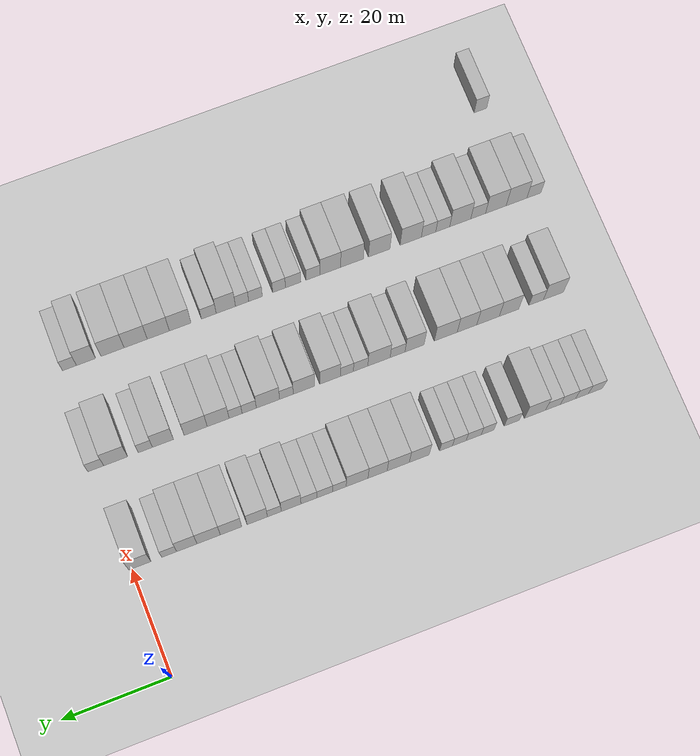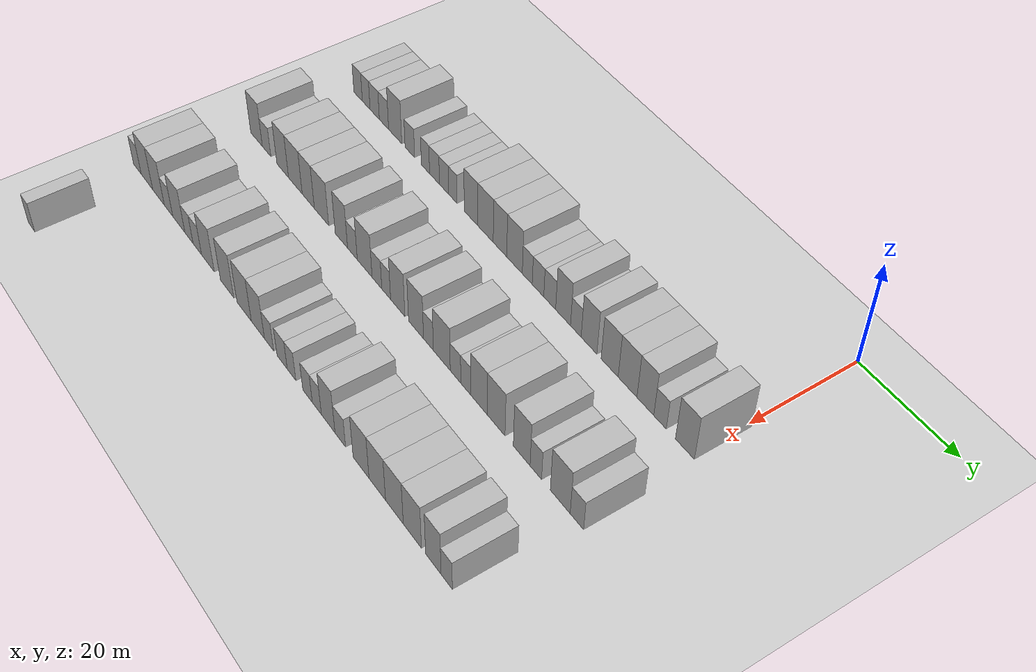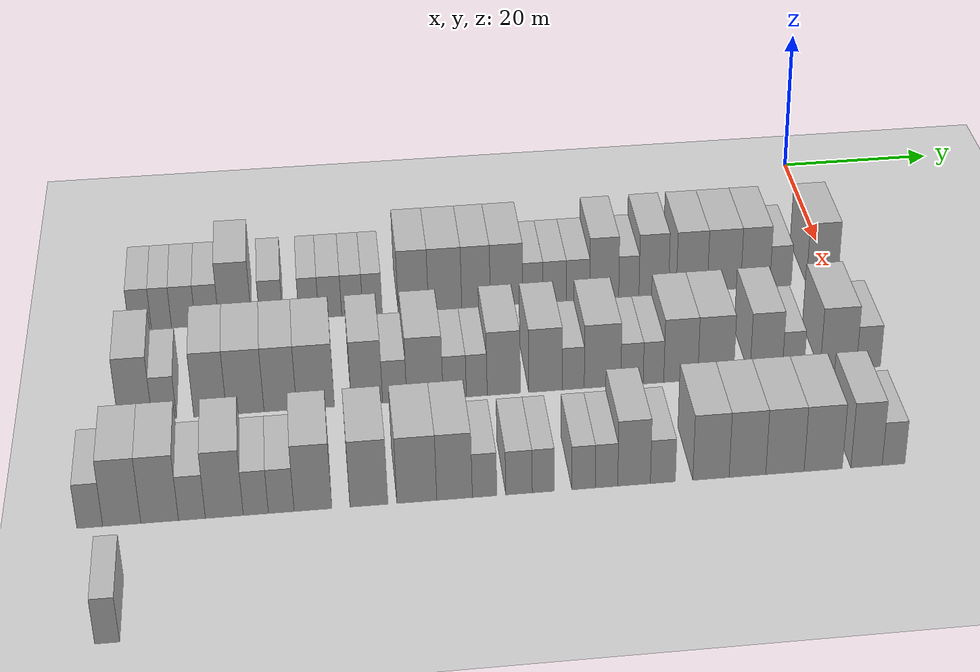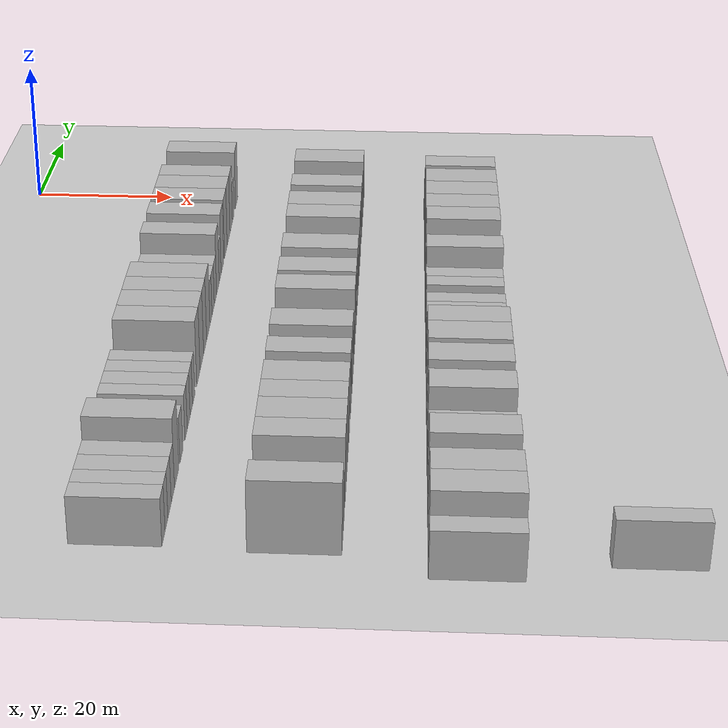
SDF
<sdf version="1.6">
 <world name="default">
  <include><name>ground_plane_1</name><uri>model://HANNAS_ground_plane</uri></include>
  <model name="building_60">
   <static>1</static>
   <pose>25.0000 -87.8100 0 0.000000 0.000000 0.000000</pose>
   <link name="link">
    <pose>0 0 3.00 0 0 0</pose>
    <collision name="collision"><geometry><box><size>10.0000 2.7169 6.0000</size></box></geometry></collision>
    <visual name="visual">
     <cast_shadows>0</cast_shadows>
     <geometry><box><size>10.0000 2.7169 6.0000</size></box></geometry>
     <material>
      <script>
       <uri>model://HANNAS_wall/materials/scripts</uri>
       <uri>model://HANNAS_wall/materials/textures</uri>
       <name>vrc/HANNAS_wall</name>
      </script>
     </material>
    </visual>
   </link>
  </model>
  <model name="building_61">
   <static>1</static>
   <pose>25.0000 -85.2121 0 0.000000 0.000000 0.000000</pose>
   <link name="link">
    <pose>0 0 3.00 0 0 0</pose>
    <collision name="collision"><geometry><box><size>10.0000 2.4790 6.0000</size></box></geometry></collision>
    <visual name="visual">
     <cast_shadows>0</cast_shadows>
     <geometry><box><size>10.0000 2.4790 6.0000</size></box></geometry>
     <material>
      <script>
       <uri>model://HANNAS_wall/materials/scripts</uri>
       <uri>model://HANNAS_wall/materials/textures</uri>
       <name>vrc/HANNAS_wall</name>
      </script>
     </material>
    </visual>
   </link>
  </model>
  <model name="building_62">
   <static>1</static>
   <pose>25.0000 -82.4997 0 0.000000 0.000000 0.000000</pose>
   <link name="link">
    <pose>0 0 3.00 0 0 0</pose>
    <collision name="collision"><geometry><box><size>10.0000 2.9458 6.0000</size></box></geometry></collision>
    <visual name="visual">
     <cast_shadows>0</cast_shadows>
     <geometry><box><size>10.0000 2.9458 6.0000</size></box></geometry>
     <material>
      <script>
       <uri>model://HANNAS_wall/materials/scripts</uri>
       <uri>model://HANNAS_wall/materials/textures</uri>
       <name>vrc/HANNAS_wall</name>
      </script>
     </material>
    </visual>
   </link>
  </model>
  <model name="building_63">
   <static>1</static>
   <pose>25.0000 -79.5836 0 0.000000 0.000000 0.000000</pose>
   <link name="link">
    <pose>0 0 3.00 0 0 0</pose>
    <collision name="collision"><geometry><box><size>10.0000 2.8862 6.0000</size></box></geometry></collision>
    <visual name="visual">
     <cast_shadows>0</cast_shadows>
     <geometry><box><size>10.0000 2.8862 6.0000</size></box></geometry>
     <material>
      <script>
       <uri>model://HANNAS_wall/materials/scripts</uri>
       <uri>model://HANNAS_wall/materials/textures</uri>
       <name>vrc/HANNAS_wall</name>
      </script>
     </material>
    </visual>
   </link>
  </model>
  <model name="building_64">
   <static>1</static>
   <pose>25.0000 -76.1144 0 0.000000 0.000000 0.000000</pose>
   <link name="link">
    <pose>0 0 4.50 0 0 0</pose>
    <collision name="collision"><geometry><box><size>10.0000 4.0522 9.0000</size></box></geometry></collision>
    <visual name="visual">
     <cast_shadows>0</cast_shadows>
     <geometry><box><size>10.0000 4.0522 9.0000</size></box></geometry>
     <material>
      <script>
       <uri>model://HANNAS_wall/materials/scripts</uri>
       <uri>model://HANNAS_wall/materials/textures</uri>
       <name>vrc/HANNAS_wall</name>
      </script>
     </material>
    </visual>
   </link>
  </model>
  <model name="building_65">
   <static>1</static>
   <pose>25.0000 -71.6403 0 0.000000 0.000000 0.000000</pose>
   <link name="link">
    <pose>0 0 3.00 0 0 0</pose>
    <collision name="collision"><geometry><box><size>10.0000 2.8962 6.0000</size></box></geometry></collision>
    <visual name="visual">
     <cast_shadows>0</cast_shadows>
     <geometry><box><size>10.0000 2.8962 6.0000</size></box></geometry>
     <material>
      <script>
       <uri>model://HANNAS_wall/materials/scripts</uri>
       <uri>model://HANNAS_wall/materials/textures</uri>
       <name>vrc/HANNAS_wall</name>
      </script>
     </material>
    </visual>
   </link>
  </model>
  <model name="building_66">
   <static>1</static>
   <pose>25.0000 -66.9735 0 0.000000 0.000000 0.000000</pose>
   <link name="link">
    <pose>0 0 3.00 0 0 0</pose>
    <collision name="collision"><geometry><box><size>10.0000 2.4374 6.0000</size></box></geometry></collision>
    <visual name="visual">
     <cast_shadows>0</cast_shadows>
     <geometry><box><size>10.0000 2.4374 6.0000</size></box></geometry>
     <material>
      <script>
       <uri>model://HANNAS_wall/materials/scripts</uri>
       <uri>model://HANNAS_wall/materials/textures</uri>
       <name>vrc/HANNAS_wall</name>
      </script>
     </material>
    </visual>
   </link>
  </model>
  <model name="building_67">
   <static>1</static>
   <pose>25.0000 -64.3177 0 0.000000 0.000000 0.000000</pose>
   <link name="link">
    <pose>0 0 3.00 0 0 0</pose>
    <collision name="collision"><geometry><box><size>10.0000 2.8742 6.0000</size></box></geometry></collision>
    <visual name="visual">
     <cast_shadows>0</cast_shadows>
     <geometry><box><size>10.0000 2.8742 6.0000</size></box></geometry>
     <material>
      <script>
       <uri>model://HANNAS_wall/materials/scripts</uri>
       <uri>model://HANNAS_wall/materials/textures</uri>
       <name>vrc/HANNAS_wall</name>
      </script>
     </material>
    </visual>
   </link>
  </model>
  <model name="building_68">
   <static>1</static>
   <pose>25.0000 -61.5649 0 0.000000 0.000000 0.000000</pose>
   <link name="link">
    <pose>0 0 3.00 0 0 0</pose>
    <collision name="collision"><geometry><box><size>10.0000 2.6316 6.0000</size></box></geometry></collision>
    <visual name="visual">
     <cast_shadows>0</cast_shadows>
     <geometry><box><size>10.0000 2.6316 6.0000</size></box></geometry>
     <material>
      <script>
       <uri>model://HANNAS_wall/materials/scripts</uri>
       <uri>model://HANNAS_wall/materials/textures</uri>
       <name>vrc/HANNAS_wall</name>
      </script>
     </material>
    </visual>
   </link>
  </model>
  <model name="building_69">
   <static>1</static>
   <pose>25.0000 -59.0268 0 0.000000 0.000000 0.000000</pose>
   <link name="link">
    <pose>0 0 3.00 0 0 0</pose>
    <collision name="collision"><geometry><box><size>10.0000 2.4444 6.0000</size></box></geometry></collision>
    <visual name="visual">
     <cast_shadows>0</cast_shadows>
     <geometry><box><size>10.0000 2.4444 6.0000</size></box></geometry>
     <material>
      <script>
       <uri>model://HANNAS_wall/materials/scripts</uri>
       <uri>model://HANNAS_wall/materials/textures</uri>
       <name>vrc/HANNAS_wall</name>
      </script>
     </material>
    </visual>
   </link>
  </model>
  <model name="building_70">
   <static>1</static>
   <pose>25.0000 -53.9069 0 0.000000 0.000000 0.000000</pose>
   <link name="link">
    <pose>0 0 4.50 0 0 0</pose>
    <collision name="collision"><geometry><box><size>10.0000 3.7955 9.0000</size></box></geometry></collision>
    <visual name="visual">
     <cast_shadows>0</cast_shadows>
     <geometry><box><size>10.0000 3.7955 9.0000</size></box></geometry>
     <material>
      <script>
       <uri>model://HANNAS_wall/materials/scripts</uri>
       <uri>model://HANNAS_wall/materials/textures</uri>
       <name>vrc/HANNAS_wall</name>
      </script>
     </material>
    </visual>
   </link>
  </model>
  <model name="building_71">
   <static>1</static>
   <pose>25.0000 -49.9043 0 0.000000 0.000000 0.000000</pose>
   <link name="link">
    <pose>0 0 4.50 0 0 0</pose>
    <collision name="collision"><geometry><box><size>10.0000 4.2096 9.0000</size></box></geometry></collision>
    <visual name="visual">
     <cast_shadows>0</cast_shadows>
     <geometry><box><size>10.0000 4.2096 9.0000</size></box></geometry>
     <material>
      <script>
       <uri>model://HANNAS_wall/materials/scripts</uri>
       <uri>model://HANNAS_wall/materials/textures</uri>
       <name>vrc/HANNAS_wall</name>
      </script>
     </material>
    </visual>
   </link>
  </model>
  <model name="building_72">
   <static>1</static>
   <pose>25.0000 -45.9890 0 0.000000 0.000000 0.000000</pose>
   <link name="link">
    <pose>0 0 4.50 0 0 0</pose>
    <collision name="collision"><geometry><box><size>10.0000 3.6211 9.0000</size></box></geometry></collision>
    <visual name="visual">
     <cast_shadows>0</cast_shadows>
     <geometry><box><size>10.0000 3.6211 9.0000</size></box></geometry>
     <material>
      <script>
       <uri>model://HANNAS_wall/materials/scripts</uri>
       <uri>model://HANNAS_wall/materials/textures</uri>
       <name>vrc/HANNAS_wall</name>
      </script>
     </material>
    </visual>
   </link>
  </model>
  <model name="building_73">
   <static>1</static>
   <pose>25.0000 -42.1173 0 0.000000 0.000000 0.000000</pose>
   <link name="link">
    <pose>0 0 4.50 0 0 0</pose>
    <collision name="collision"><geometry><box><size>10.0000 4.1223 9.0000</size></box></geometry></collision>
    <visual name="visual">
     <cast_shadows>0</cast_shadows>
     <geometry><box><size>10.0000 4.1223 9.0000</size></box></geometry>
     <material>
      <script>
       <uri>model://HANNAS_wall/materials/scripts</uri>
       <uri>model://HANNAS_wall/materials/textures</uri>
       <name>vrc/HANNAS_wall</name>
      </script>
     </material>
    </visual>
   </link>
  </model>
  <model name="building_74">
   <static>1</static>
   <pose>25.0000 -38.7718 0 0.000000 0.000000 0.000000</pose>
   <link name="link">
    <pose>0 0 3.00 0 0 0</pose>
    <collision name="collision"><geometry><box><size>10.0000 2.5688 6.0000</size></box></geometry></collision>
    <visual name="visual">
     <cast_shadows>0</cast_shadows>
     <geometry><box><size>10.0000 2.5688 6.0000</size></box></geometry>
     <material>
      <script>
       <uri>model://HANNAS_wall/materials/scripts</uri>
       <uri>model://HANNAS_wall/materials/textures</uri>
       <name>vrc/HANNAS_wall</name>
      </script>
     </material>
    </visual>
   </link>
  </model>
  <model name="building_75">
   <static>1</static>
   <pose>25.0000 -36.0039 0 0.000000 0.000000 0.000000</pose>
   <link name="link">
    <pose>0 0 3.00 0 0 0</pose>
    <collision name="collision"><geometry><box><size>10.0000 2.9669 6.0000</size></box></geometry></collision>
    <visual name="visual">
     <cast_shadows>0</cast_shadows>
     <geometry><box><size>10.0000 2.9669 6.0000</size></box></geometry>
     <material>
      <script>
       <uri>model://HANNAS_wall/materials/scripts</uri>
       <uri>model://HANNAS_wall/materials/textures</uri>
       <name>vrc/HANNAS_wall</name>
      </script>
     </material>
    </visual>
   </link>
  </model>
  <model name="building_76">
   <static>1</static>
   <pose>25.0000 -33.0251 0 0.000000 0.000000 0.000000</pose>
   <link name="link">
    <pose>0 0 3.00 0 0 0</pose>
    <collision name="collision"><geometry><box><size>10.0000 2.9907 6.0000</size></box></geometry></collision>
    <visual name="visual">
     <cast_shadows>0</cast_shadows>
     <geometry><box><size>10.0000 2.9907 6.0000</size></box></geometry>
     <material>
      <script>
       <uri>model://HANNAS_wall/materials/scripts</uri>
       <uri>model://HANNAS_wall/materials/textures</uri>
       <name>vrc/HANNAS_wall</name>
      </script>
     </material>
    </visual>
   </link>
  </model>
  <model name="building_77">
   <static>1</static>
   <pose>25.0000 -29.6855 0 0.000000 0.000000 0.000000</pose>
   <link name="link">
    <pose>0 0 4.50 0 0 0</pose>
    <collision name="collision"><geometry><box><size>10.0000 3.6885 9.0000</size></box></geometry></collision>
    <visual name="visual">
     <cast_shadows>0</cast_shadows>
     <geometry><box><size>10.0000 3.6885 9.0000</size></box></geometry>
     <material>
      <script>
       <uri>model://HANNAS_wall/materials/scripts</uri>
       <uri>model://HANNAS_wall/materials/textures</uri>
       <name>vrc/HANNAS_wall</name>
      </script>
     </material>
    </visual>
   </link>
  </model>
  <model name="building_78">
   <static>1</static>
   <pose>25.0000 -26.5414 0 0.000000 0.000000 0.000000</pose>
   <link name="link">
    <pose>0 0 3.00 0 0 0</pose>
    <collision name="collision"><geometry><box><size>10.0000 2.5996 6.0000</size></box></geometry></collision>
    <visual name="visual">
     <cast_shadows>0</cast_shadows>
     <geometry><box><size>10.0000 2.5996 6.0000</size></box></geometry>
     <material>
      <script>
       <uri>model://HANNAS_wall/materials/scripts</uri>
       <uri>model://HANNAS_wall/materials/textures</uri>
       <name>vrc/HANNAS_wall</name>
      </script>
     </material>
    </visual>
   </link>
  </model>
  <model name="building_79">
   <static>1</static>
   <pose>25.0000 -23.3425 0 0.000000 0.000000 0.000000</pose>
   <link name="link">
    <pose>0 0 4.50 0 0 0</pose>
    <collision name="collision"><geometry><box><size>10.0000 3.7981 9.0000</size></box></geometry></collision>
    <visual name="visual">
     <cast_shadows>0</cast_shadows>
     <geometry><box><size>10.0000 3.7981 9.0000</size></box></geometry>
     <material>
      <script>
       <uri>model://HANNAS_wall/materials/scripts</uri>
       <uri>model://HANNAS_wall/materials/textures</uri>
       <name>vrc/HANNAS_wall</name>
      </script>
     </material>
    </visual>
   </link>
  </model>
  <model name="building_80">
   <static>1</static>
   <pose>25.0000 -18.4394 0 0.000000 0.000000 0.000000</pose>
   <link name="link">
    <pose>0 0 4.50 0 0 0</pose>
    <collision name="collision"><geometry><box><size>10.0000 4.0082 9.0000</size></box></geometry></collision>
    <visual name="visual">
     <cast_shadows>0</cast_shadows>
     <geometry><box><size>10.0000 4.0082 9.0000</size></box></geometry>
     <material>
      <script>
       <uri>model://HANNAS_wall/materials/scripts</uri>
       <uri>model://HANNAS_wall/materials/textures</uri>
       <name>vrc/HANNAS_wall</name>
      </script>
     </material>
    </visual>
   </link>
  </model>
  <model name="building_81">
   <static>1</static>
   <pose>25.0000 -14.2755 0 0.000000 0.000000 0.000000</pose>
   <link name="link">
    <pose>0 0 4.50 0 0 0</pose>
    <collision name="collision"><geometry><box><size>10.0000 4.3196 9.0000</size></box></geometry></collision>
    <visual name="visual">
     <cast_shadows>0</cast_shadows>
     <geometry><box><size>10.0000 4.3196 9.0000</size></box></geometry>
     <material>
      <script>
       <uri>model://HANNAS_wall/materials/scripts</uri>
       <uri>model://HANNAS_wall/materials/textures</uri>
       <name>vrc/HANNAS_wall</name>
      </script>
     </material>
    </visual>
   </link>
  </model>
  <model name="building_82">
   <static>1</static>
   <pose>25.0000 -10.2215 0 0.000000 0.000000 0.000000</pose>
   <link name="link">
    <pose>0 0 4.50 0 0 0</pose>
    <collision name="collision"><geometry><box><size>10.0000 3.7882 9.0000</size></box></geometry></collision>
    <visual name="visual">
     <cast_shadows>0</cast_shadows>
     <geometry><box><size>10.0000 3.7882 9.0000</size></box></geometry>
     <material>
      <script>
       <uri>model://HANNAS_wall/materials/scripts</uri>
       <uri>model://HANNAS_wall/materials/textures</uri>
       <name>vrc/HANNAS_wall</name>
      </script>
     </material>
    </visual>
   </link>
  </model>
  <model name="building_83">
   <static>1</static>
   <pose>25.0000 -6.9398 0 0.000000 0.000000 0.000000</pose>
   <link name="link">
    <pose>0 0 3.00 0 0 0</pose>
    <collision name="collision"><geometry><box><size>10.0000 2.7752 6.0000</size></box></geometry></collision>
    <visual name="visual">
     <cast_shadows>0</cast_shadows>
     <geometry><box><size>10.0000 2.7752 6.0000</size></box></geometry>
     <material>
      <script>
       <uri>model://HANNAS_wall/materials/scripts</uri>
       <uri>model://HANNAS_wall/materials/textures</uri>
       <name>vrc/HANNAS_wall</name>
      </script>
     </material>
    </visual>
   </link>
  </model>
  <model name="building_84">
   <static>1</static>
   <pose>25.0000 -1.5081 0 0.000000 0.000000 0.000000</pose>
   <link name="link">
    <pose>0 0 4.50 0 0 0</pose>
    <collision name="collision"><geometry><box><size>10.0000 4.0881 9.0000</size></box></geometry></collision>
    <visual name="visual">
     <cast_shadows>0</cast_shadows>
     <geometry><box><size>10.0000 4.0881 9.0000</size></box></geometry>
     <material>
      <script>
       <uri>model://HANNAS_wall/materials/scripts</uri>
       <uri>model://HANNAS_wall/materials/textures</uri>
       <name>vrc/HANNAS_wall</name>
      </script>
     </material>
    </visual>
   </link>
  </model>
  <model name="building_232">
   <static>1</static>
   <pose>44.0000 -87.7661 0 0.000000 0.000000 0.000000</pose>
   <link name="link">
    <pose>0 0 4.50 0 0 0</pose>
    <collision name="collision"><geometry><box><size>10.0000 3.9168 9.0000</size></box></geometry></collision>
    <visual name="visual">
     <cast_shadows>0</cast_shadows>
     <geometry><box><size>10.0000 3.9168 9.0000</size></box></geometry>
     <material>
      <script>
       <uri>model://HANNAS_wall/materials/scripts</uri>
       <uri>model://HANNAS_wall/materials/textures</uri>
       <name>vrc/HANNAS_wall</name>
      </script>
     </material>
    </visual>
   </link>
  </model>
  <model name="building_233">
   <static>1</static>
   <pose>44.0000 -84.3875 0 0.000000 0.000000 0.000000</pose>
   <link name="link">
    <pose>0 0 3.00 0 0 0</pose>
    <collision name="collision"><geometry><box><size>10.0000 2.8404 6.0000</size></box></geometry></collision>
    <visual name="visual">
     <cast_shadows>0</cast_shadows>
     <geometry><box><size>10.0000 2.8404 6.0000</size></box></geometry>
     <material>
      <script>
       <uri>model://HANNAS_wall/materials/scripts</uri>
       <uri>model://HANNAS_wall/materials/textures</uri>
       <name>vrc/HANNAS_wall</name>
      </script>
     </material>
    </visual>
   </link>
  </model>
  <model name="building_234">
   <static>1</static>
   <pose>44.0000 -79.0650 0 0.000000 0.000000 0.000000</pose>
   <link name="link">
    <pose>0 0 4.50 0 0 0</pose>
    <collision name="collision"><geometry><box><size>10.0000 3.8046 9.0000</size></box></geometry></collision>
    <visual name="visual">
     <cast_shadows>0</cast_shadows>
     <geometry><box><size>10.0000 3.8046 9.0000</size></box></geometry>
     <material>
      <script>
       <uri>model://HANNAS_wall/materials/scripts</uri>
       <uri>model://HANNAS_wall/materials/textures</uri>
       <name>vrc/HANNAS_wall</name>
      </script>
     </material>
    </visual>
   </link>
  </model>
  <model name="building_235">
   <static>1</static>
   <pose>44.0000 -74.9715 0 0.000000 0.000000 0.000000</pose>
   <link name="link">
    <pose>0 0 4.50 0 0 0</pose>
    <collision name="collision"><geometry><box><size>10.0000 4.3825 9.0000</size></box></geometry></collision>
    <visual name="visual">
     <cast_shadows>0</cast_shadows>
     <geometry><box><size>10.0000 4.3825 9.0000</size></box></geometry>
     <material>
      <script>
       <uri>model://HANNAS_wall/materials/scripts</uri>
       <uri>model://HANNAS_wall/materials/textures</uri>
       <name>vrc/HANNAS_wall</name>
      </script>
     </material>
    </visual>
   </link>
  </model>
  <model name="building_236">
   <static>1</static>
   <pose>44.0000 -70.8755 0 0.000000 0.000000 0.000000</pose>
   <link name="link">
    <pose>0 0 4.50 0 0 0</pose>
    <collision name="collision"><geometry><box><size>10.0000 3.8094 9.0000</size></box></geometry></collision>
    <visual name="visual">
     <cast_shadows>0</cast_shadows>
     <geometry><box><size>10.0000 3.8094 9.0000</size></box></geometry>
     <material>
      <script>
       <uri>model://HANNAS_wall/materials/scripts</uri>
       <uri>model://HANNAS_wall/materials/textures</uri>
       <name>vrc/HANNAS_wall</name>
      </script>
     </material>
    </visual>
   </link>
  </model>
  <model name="building_237">
   <static>1</static>
   <pose>44.0000 -66.7495 0 0.000000 0.000000 0.000000</pose>
   <link name="link">
    <pose>0 0 4.50 0 0 0</pose>
    <collision name="collision"><geometry><box><size>10.0000 4.4424 9.0000</size></box></geometry></collision>
    <visual name="visual">
     <cast_shadows>0</cast_shadows>
     <geometry><box><size>10.0000 4.4424 9.0000</size></box></geometry>
     <material>
      <script>
       <uri>model://HANNAS_wall/materials/scripts</uri>
       <uri>model://HANNAS_wall/materials/textures</uri>
       <name>vrc/HANNAS_wall</name>
      </script>
     </material>
    </visual>
   </link>
  </model>
  <model name="building_238">
   <static>1</static>
   <pose>44.0000 -60.6837 0 0.000000 0.000000 0.000000</pose>
   <link name="link">
    <pose>0 0 4.50 0 0 0</pose>
    <collision name="collision"><geometry><box><size>10.0000 3.6893 9.0000</size></box></geometry></collision>
    <visual name="visual">
     <cast_shadows>0</cast_shadows>
     <geometry><box><size>10.0000 3.6893 9.0000</size></box></geometry>
     <material>
      <script>
       <uri>model://HANNAS_wall/materials/scripts</uri>
       <uri>model://HANNAS_wall/materials/textures</uri>
       <name>vrc/HANNAS_wall</name>
      </script>
     </material>
    </visual>
   </link>
  </model>
  <model name="building_239">
   <static>1</static>
   <pose>44.0000 -57.4089 0 0.000000 0.000000 0.000000</pose>
   <link name="link">
    <pose>0 0 3.00 0 0 0</pose>
    <collision name="collision"><geometry><box><size>10.0000 2.8602 6.0000</size></box></geometry></collision>
    <visual name="visual">
     <cast_shadows>0</cast_shadows>
     <geometry><box><size>10.0000 2.8602 6.0000</size></box></geometry>
     <material>
      <script>
       <uri>model://HANNAS_wall/materials/scripts</uri>
       <uri>model://HANNAS_wall/materials/textures</uri>
       <name>vrc/HANNAS_wall</name>
      </script>
     </material>
    </visual>
   </link>
  </model>
  <model name="building_240">
   <static>1</static>
   <pose>44.0000 -53.8265 0 0.000000 0.000000 0.000000</pose>
   <link name="link">
    <pose>0 0 4.50 0 0 0</pose>
    <collision name="collision"><geometry><box><size>10.0000 4.3045 9.0000</size></box></geometry></collision>
    <visual name="visual">
     <cast_shadows>0</cast_shadows>
     <geometry><box><size>10.0000 4.3045 9.0000</size></box></geometry>
     <material>
      <script>
       <uri>model://HANNAS_wall/materials/scripts</uri>
       <uri>model://HANNAS_wall/materials/textures</uri>
       <name>vrc/HANNAS_wall</name>
      </script>
     </material>
    </visual>
   </link>
  </model>
  <model name="building_241">
   <static>1</static>
   <pose>44.0000 -50.2879 0 0.000000 0.000000 0.000000</pose>
   <link name="link">
    <pose>0 0 3.00 0 0 0</pose>
    <collision name="collision"><geometry><box><size>10.0000 2.7726 6.0000</size></box></geometry></collision>
    <visual name="visual">
     <cast_shadows>0</cast_shadows>
     <geometry><box><size>10.0000 2.7726 6.0000</size></box></geometry>
     <material>
      <script>
       <uri>model://HANNAS_wall/materials/scripts</uri>
       <uri>model://HANNAS_wall/materials/textures</uri>
       <name>vrc/HANNAS_wall</name>
      </script>
     </material>
    </visual>
   </link>
  </model>
  <model name="building_242">
   <static>1</static>
   <pose>44.0000 -47.6591 0 0.000000 0.000000 0.000000</pose>
   <link name="link">
    <pose>0 0 3.00 0 0 0</pose>
    <collision name="collision"><geometry><box><size>10.0000 2.4850 6.0000</size></box></geometry></collision>
    <visual name="visual">
     <cast_shadows>0</cast_shadows>
     <geometry><box><size>10.0000 2.4850 6.0000</size></box></geometry>
     <material>
      <script>
       <uri>model://HANNAS_wall/materials/scripts</uri>
       <uri>model://HANNAS_wall/materials/textures</uri>
       <name>vrc/HANNAS_wall</name>
      </script>
     </material>
    </visual>
   </link>
  </model>
  <model name="building_243">
   <static>1</static>
   <pose>44.0000 -44.4309 0 0.000000 0.000000 0.000000</pose>
   <link name="link">
    <pose>0 0 4.50 0 0 0</pose>
    <collision name="collision"><geometry><box><size>10.0000 3.9715 9.0000</size></box></geometry></collision>
    <visual name="visual">
     <cast_shadows>0</cast_shadows>
     <geometry><box><size>10.0000 3.9715 9.0000</size></box></geometry>
     <material>
      <script>
       <uri>model://HANNAS_wall/materials/scripts</uri>
       <uri>model://HANNAS_wall/materials/textures</uri>
       <name>vrc/HANNAS_wall</name>
      </script>
     </material>
    </visual>
   </link>
  </model>
  <model name="building_244">
   <static>1</static>
   <pose>44.0000 -39.4222 0 0.000000 0.000000 0.000000</pose>
   <link name="link">
    <pose>0 0 4.50 0 0 0</pose>
    <collision name="collision"><geometry><box><size>10.0000 4.0457 9.0000</size></box></geometry></collision>
    <visual name="visual">
     <cast_shadows>0</cast_shadows>
     <geometry><box><size>10.0000 4.0457 9.0000</size></box></geometry>
     <material>
      <script>
       <uri>model://HANNAS_wall/materials/scripts</uri>
       <uri>model://HANNAS_wall/materials/textures</uri>
       <name>vrc/HANNAS_wall</name>
      </script>
     </material>
    </visual>
   </link>
  </model>
  <model name="building_245">
   <static>1</static>
   <pose>44.0000 -36.0919 0 0.000000 0.000000 0.000000</pose>
   <link name="link">
    <pose>0 0 3.00 0 0 0</pose>
    <collision name="collision"><geometry><box><size>10.0000 2.6151 6.0000</size></box></geometry></collision>
    <visual name="visual">
     <cast_shadows>0</cast_shadows>
     <geometry><box><size>10.0000 2.6151 6.0000</size></box></geometry>
     <material>
      <script>
       <uri>model://HANNAS_wall/materials/scripts</uri>
       <uri>model://HANNAS_wall/materials/textures</uri>
       <name>vrc/HANNAS_wall</name>
      </script>
     </material>
    </visual>
   </link>
  </model>
  <model name="building_246">
   <static>1</static>
   <pose>44.0000 -32.5757 0 0.000000 0.000000 0.000000</pose>
   <link name="link">
    <pose>0 0 4.50 0 0 0</pose>
    <collision name="collision"><geometry><box><size>10.0000 4.4173 9.0000</size></box></geometry></collision>
    <visual name="visual">
     <cast_shadows>0</cast_shadows>
     <geometry><box><size>10.0000 4.4173 9.0000</size></box></geometry>
     <material>
      <script>
       <uri>model://HANNAS_wall/materials/scripts</uri>
       <uri>model://HANNAS_wall/materials/textures</uri>
       <name>vrc/HANNAS_wall</name>
      </script>
     </material>
    </visual>
   </link>
  </model>
  <model name="building_247">
   <static>1</static>
   <pose>44.0000 -29.0172 0 0.000000 0.000000 0.000000</pose>
   <link name="link">
    <pose>0 0 3.00 0 0 0</pose>
    <collision name="collision"><geometry><box><size>10.0000 2.6998 6.0000</size></box></geometry></collision>
    <visual name="visual">
     <cast_shadows>0</cast_shadows>
     <geometry><box><size>10.0000 2.6998 6.0000</size></box></geometry>
     <material>
      <script>
       <uri>model://HANNAS_wall/materials/scripts</uri>
       <uri>model://HANNAS_wall/materials/textures</uri>
       <name>vrc/HANNAS_wall</name>
      </script>
     </material>
    </visual>
   </link>
  </model>
  <model name="building_248">
   <static>1</static>
   <pose>44.0000 -26.4211 0 0.000000 0.000000 0.000000</pose>
   <link name="link">
    <pose>0 0 3.00 0 0 0</pose>
    <collision name="collision"><geometry><box><size>10.0000 2.4923 6.0000</size></box></geometry></collision>
    <visual name="visual">
     <cast_shadows>0</cast_shadows>
     <geometry><box><size>10.0000 2.4923 6.0000</size></box></geometry>
     <material>
      <script>
       <uri>model://HANNAS_wall/materials/scripts</uri>
       <uri>model://HANNAS_wall/materials/textures</uri>
       <name>vrc/HANNAS_wall</name>
      </script>
     </material>
    </visual>
   </link>
  </model>
  <model name="building_249">
   <static>1</static>
   <pose>44.0000 -23.1068 0 0.000000 0.000000 0.000000</pose>
   <link name="link">
    <pose>0 0 4.50 0 0 0</pose>
    <collision name="collision"><geometry><box><size>10.0000 4.1363 9.0000</size></box></geometry></collision>
    <visual name="visual">
     <cast_shadows>0</cast_shadows>
     <geometry><box><size>10.0000 4.1363 9.0000</size></box></geometry>
     <material>
      <script>
       <uri>model://HANNAS_wall/materials/scripts</uri>
       <uri>model://HANNAS_wall/materials/textures</uri>
       <name>vrc/HANNAS_wall</name>
      </script>
     </material>
    </visual>
   </link>
  </model>
  <model name="building_250">
   <static>1</static>
   <pose>44.0000 -18.8574 0 0.000000 0.000000 0.000000</pose>
   <link name="link">
    <pose>0 0 4.50 0 0 0</pose>
    <collision name="collision"><geometry><box><size>10.0000 4.3626 9.0000</size></box></geometry></collision>
    <visual name="visual">
     <cast_shadows>0</cast_shadows>
     <geometry><box><size>10.0000 4.3626 9.0000</size></box></geometry>
     <material>
      <script>
       <uri>model://HANNAS_wall/materials/scripts</uri>
       <uri>model://HANNAS_wall/materials/textures</uri>
       <name>vrc/HANNAS_wall</name>
      </script>
     </material>
    </visual>
   </link>
  </model>
  <model name="building_251">
   <static>1</static>
   <pose>44.0000 -12.6975 0 0.000000 0.000000 0.000000</pose>
   <link name="link">
    <pose>0 0 4.50 0 0 0</pose>
    <collision name="collision"><geometry><box><size>10.0000 3.9571 9.0000</size></box></geometry></collision>
    <visual name="visual">
     <cast_shadows>0</cast_shadows>
     <geometry><box><size>10.0000 3.9571 9.0000</size></box></geometry>
     <material>
      <script>
       <uri>model://HANNAS_wall/materials/scripts</uri>
       <uri>model://HANNAS_wall/materials/textures</uri>
       <name>vrc/HANNAS_wall</name>
      </script>
     </material>
    </visual>
   </link>
  </model>
  <model name="building_252">
   <static>1</static>
   <pose>44.0000 -9.3830 0 0.000000 0.000000 0.000000</pose>
   <link name="link">
    <pose>0 0 3.00 0 0 0</pose>
    <collision name="collision"><geometry><box><size>10.0000 2.6719 6.0000</size></box></geometry></collision>
    <visual name="visual">
     <cast_shadows>0</cast_shadows>
     <geometry><box><size>10.0000 2.6719 6.0000</size></box></geometry>
     <material>
      <script>
       <uri>model://HANNAS_wall/materials/scripts</uri>
       <uri>model://HANNAS_wall/materials/textures</uri>
       <name>vrc/HANNAS_wall</name>
      </script>
     </material>
    </visual>
   </link>
  </model>
  <model name="building_253">
   <static>1</static>
   <pose>44.0000 -3.8110 0 0.000000 0.000000 0.000000</pose>
   <link name="link">
    <pose>0 0 4.50 0 0 0</pose>
    <collision name="collision"><geometry><box><size>10.0000 4.4721 9.0000</size></box></geometry></collision>
    <visual name="visual">
     <cast_shadows>0</cast_shadows>
     <geometry><box><size>10.0000 4.4721 9.0000</size></box></geometry>
     <material>
      <script>
       <uri>model://HANNAS_wall/materials/scripts</uri>
       <uri>model://HANNAS_wall/materials/textures</uri>
       <name>vrc/HANNAS_wall</name>
      </script>
     </material>
    </visual>
   </link>
  </model>
  <model name="building_254">
   <static>1</static>
   <pose>44.0000 -0.0889 0 0.000000 0.000000 0.000000</pose>
   <link name="link">
    <pose>0 0 3.00 0 0 0</pose>
    <collision name="collision"><geometry><box><size>10.0000 2.9723 6.0000</size></box></geometry></collision>
    <visual name="visual">
     <cast_shadows>0</cast_shadows>
     <geometry><box><size>10.0000 2.9723 6.0000</size></box></geometry>
     <material>
      <script>
       <uri>model://HANNAS_wall/materials/scripts</uri>
       <uri>model://HANNAS_wall/materials/textures</uri>
       <name>vrc/HANNAS_wall</name>
      </script>
     </material>
    </visual>
   </link>
  </model>
  <model name="building_389">
   <static>1</static>
   <pose>63.0000 -91.9930 0 0.000000 0.000000 0.000000</pose>
   <link name="link">
    <pose>0 0 3.00 0 0 0</pose>
    <collision name="collision"><geometry><box><size>10.0000 2.7856 6.0000</size></box></geometry></collision>
    <visual name="visual">
     <cast_shadows>0</cast_shadows>
     <geometry><box><size>10.0000 2.7856 6.0000</size></box></geometry>
     <material>
      <script>
       <uri>model://HANNAS_wall/materials/scripts</uri>
       <uri>model://HANNAS_wall/materials/textures</uri>
       <name>vrc/HANNAS_wall</name>
      </script>
     </material>
    </visual>
   </link>
  </model>
  <model name="building_390">
   <static>1</static>
   <pose>63.0000 -88.5371 0 0.000000 0.000000 0.000000</pose>
   <link name="link">
    <pose>0 0 4.50 0 0 0</pose>
    <collision name="collision"><geometry><box><size>10.0000 4.1262 9.0000</size></box></geometry></collision>
    <visual name="visual">
     <cast_shadows>0</cast_shadows>
     <geometry><box><size>10.0000 4.1262 9.0000</size></box></geometry>
     <material>
      <script>
       <uri>model://HANNAS_wall/materials/scripts</uri>
       <uri>model://HANNAS_wall/materials/textures</uri>
       <name>vrc/HANNAS_wall</name>
      </script>
     </material>
    </visual>
   </link>
  </model>
  <model name="building_391">
   <static>1</static>
   <pose>63.0000 -84.4251 0 0.000000 0.000000 0.000000</pose>
   <link name="link">
    <pose>0 0 4.50 0 0 0</pose>
    <collision name="collision"><geometry><box><size>10.0000 4.0978 9.0000</size></box></geometry></collision>
    <visual name="visual">
     <cast_shadows>0</cast_shadows>
     <geometry><box><size>10.0000 4.0978 9.0000</size></box></geometry>
     <material>
      <script>
       <uri>model://HANNAS_wall/materials/scripts</uri>
       <uri>model://HANNAS_wall/materials/textures</uri>
       <name>vrc/HANNAS_wall</name>
      </script>
     </material>
    </visual>
   </link>
  </model>
  <model name="building_392">
   <static>1</static>
   <pose>63.0000 -80.9093 0 0.000000 0.000000 0.000000</pose>
   <link name="link">
    <pose>0 0 3.00 0 0 0</pose>
    <collision name="collision"><geometry><box><size>10.0000 2.9337 6.0000</size></box></geometry></collision>
    <visual name="visual">
     <cast_shadows>0</cast_shadows>
     <geometry><box><size>10.0000 2.9337 6.0000</size></box></geometry>
     <material>
      <script>
       <uri>model://HANNAS_wall/materials/scripts</uri>
       <uri>model://HANNAS_wall/materials/textures</uri>
       <name>vrc/HANNAS_wall</name>
      </script>
     </material>
    </visual>
   </link>
  </model>
  <model name="building_393">
   <static>1</static>
   <pose>63.0000 -77.3692 0 0.000000 0.000000 0.000000</pose>
   <link name="link">
    <pose>0 0 4.50 0 0 0</pose>
    <collision name="collision"><geometry><box><size>10.0000 4.1465 9.0000</size></box></geometry></collision>
    <visual name="visual">
     <cast_shadows>0</cast_shadows>
     <geometry><box><size>10.0000 4.1465 9.0000</size></box></geometry>
     <material>
      <script>
       <uri>model://HANNAS_wall/materials/scripts</uri>
       <uri>model://HANNAS_wall/materials/textures</uri>
       <name>vrc/HANNAS_wall</name>
      </script>
     </material>
    </visual>
   </link>
  </model>
  <model name="building_394">
   <static>1</static>
   <pose>63.0000 -73.9186 0 0.000000 0.000000 0.000000</pose>
   <link name="link">
    <pose>0 0 3.00 0 0 0</pose>
    <collision name="collision"><geometry><box><size>10.0000 2.7549 6.0000</size></box></geometry></collision>
    <visual name="visual">
     <cast_shadows>0</cast_shadows>
     <geometry><box><size>10.0000 2.7549 6.0000</size></box></geometry>
     <material>
      <script>
       <uri>model://HANNAS_wall/materials/scripts</uri>
       <uri>model://HANNAS_wall/materials/textures</uri>
       <name>vrc/HANNAS_wall</name>
      </script>
     </material>
    </visual>
   </link>
  </model>
  <model name="building_395">
   <static>1</static>
   <pose>63.0000 -71.1252 0 0.000000 0.000000 0.000000</pose>
   <link name="link">
    <pose>0 0 3.00 0 0 0</pose>
    <collision name="collision"><geometry><box><size>10.0000 2.8318 6.0000</size></box></geometry></collision>
    <visual name="visual">
     <cast_shadows>0</cast_shadows>
     <geometry><box><size>10.0000 2.8318 6.0000</size></box></geometry>
     <material>
      <script>
       <uri>model://HANNAS_wall/materials/scripts</uri>
       <uri>model://HANNAS_wall/materials/textures</uri>
       <name>vrc/HANNAS_wall</name>
      </script>
     </material>
    </visual>
   </link>
  </model>
  <model name="building_396">
   <static>1</static>
   <pose>63.0000 -67.6256 0 0.000000 0.000000 0.000000</pose>
   <link name="link">
    <pose>0 0 4.50 0 0 0</pose>
    <collision name="collision"><geometry><box><size>10.0000 4.1674 9.0000</size></box></geometry></collision>
    <visual name="visual">
     <cast_shadows>0</cast_shadows>
     <geometry><box><size>10.0000 4.1674 9.0000</size></box></geometry>
     <material>
      <script>
       <uri>model://HANNAS_wall/materials/scripts</uri>
       <uri>model://HANNAS_wall/materials/textures</uri>
       <name>vrc/HANNAS_wall</name>
      </script>
     </material>
    </visual>
   </link>
  </model>
  <model name="building_397">
   <static>1</static>
   <pose>63.0000 -61.4375 0 0.000000 0.000000 0.000000</pose>
   <link name="link">
    <pose>0 0 4.50 0 0 0</pose>
    <collision name="collision"><geometry><box><size>10.0000 4.2088 9.0000</size></box></geometry></collision>
    <visual name="visual">
     <cast_shadows>0</cast_shadows>
     <geometry><box><size>10.0000 4.2088 9.0000</size></box></geometry>
     <material>
      <script>
       <uri>model://HANNAS_wall/materials/scripts</uri>
       <uri>model://HANNAS_wall/materials/textures</uri>
       <name>vrc/HANNAS_wall</name>
      </script>
     </material>
    </visual>
   </link>
  </model>
  <model name="building_398">
   <static>1</static>
   <pose>63.0000 -56.1097 0 0.000000 0.000000 0.000000</pose>
   <link name="link">
    <pose>0 0 4.50 0 0 0</pose>
    <collision name="collision"><geometry><box><size>10.0000 4.4469 9.0000</size></box></geometry></collision>
    <visual name="visual">
     <cast_shadows>0</cast_shadows>
     <geometry><box><size>10.0000 4.4469 9.0000</size></box></geometry>
     <material>
      <script>
       <uri>model://HANNAS_wall/materials/scripts</uri>
       <uri>model://HANNAS_wall/materials/textures</uri>
       <name>vrc/HANNAS_wall</name>
      </script>
     </material>
    </visual>
   </link>
  </model>
  <model name="building_399">
   <static>1</static>
   <pose>63.0000 -51.8984 0 0.000000 0.000000 0.000000</pose>
   <link name="link">
    <pose>0 0 4.50 0 0 0</pose>
    <collision name="collision"><geometry><box><size>10.0000 3.9757 9.0000</size></box></geometry></collision>
    <visual name="visual">
     <cast_shadows>0</cast_shadows>
     <geometry><box><size>10.0000 3.9757 9.0000</size></box></geometry>
     <material>
      <script>
       <uri>model://HANNAS_wall/materials/scripts</uri>
       <uri>model://HANNAS_wall/materials/textures</uri>
       <name>vrc/HANNAS_wall</name>
      </script>
     </material>
    </visual>
   </link>
  </model>
  <model name="building_400">
   <static>1</static>
   <pose>63.0000 -48.5380 0 0.000000 0.000000 0.000000</pose>
   <link name="link">
    <pose>0 0 3.00 0 0 0</pose>
    <collision name="collision"><geometry><box><size>10.0000 2.7451 6.0000</size></box></geometry></collision>
    <visual name="visual">
     <cast_shadows>0</cast_shadows>
     <geometry><box><size>10.0000 2.7451 6.0000</size></box></geometry>
     <material>
      <script>
       <uri>model://HANNAS_wall/materials/scripts</uri>
       <uri>model://HANNAS_wall/materials/textures</uri>
       <name>vrc/HANNAS_wall</name>
      </script>
     </material>
    </visual>
   </link>
  </model>
  <model name="building_401">
   <static>1</static>
   <pose>63.0000 -44.6767 0 0.000000 0.000000 0.000000</pose>
   <link name="link">
    <pose>0 0 3.00 0 0 0</pose>
    <collision name="collision"><geometry><box><size>10.0000 2.9777 6.0000</size></box></geometry></collision>
    <visual name="visual">
     <cast_shadows>0</cast_shadows>
     <geometry><box><size>10.0000 2.9777 6.0000</size></box></geometry>
     <material>
      <script>
       <uri>model://HANNAS_wall/materials/scripts</uri>
       <uri>model://HANNAS_wall/materials/textures</uri>
       <name>vrc/HANNAS_wall</name>
      </script>
     </material>
    </visual>
   </link>
  </model>
  <model name="building_402">
   <static>1</static>
   <pose>63.0000 -41.9483 0 0.000000 0.000000 0.000000</pose>
   <link name="link">
    <pose>0 0 3.00 0 0 0</pose>
    <collision name="collision"><geometry><box><size>10.0000 2.4790 6.0000</size></box></geometry></collision>
    <visual name="visual">
     <cast_shadows>0</cast_shadows>
     <geometry><box><size>10.0000 2.4790 6.0000</size></box></geometry>
     <material>
      <script>
       <uri>model://HANNAS_wall/materials/scripts</uri>
       <uri>model://HANNAS_wall/materials/textures</uri>
       <name>vrc/HANNAS_wall</name>
      </script>
     </material>
    </visual>
   </link>
  </model>
  <model name="building_403">
   <static>1</static>
   <pose>63.0000 -37.3909 0 0.000000 0.000000 0.000000</pose>
   <link name="link">
    <pose>0 0 3.00 0 0 0</pose>
    <collision name="collision"><geometry><box><size>10.0000 2.6358 6.0000</size></box></geometry></collision>
    <visual name="visual">
     <cast_shadows>0</cast_shadows>
     <geometry><box><size>10.0000 2.6358 6.0000</size></box></geometry>
     <material>
      <script>
       <uri>model://HANNAS_wall/materials/scripts</uri>
       <uri>model://HANNAS_wall/materials/textures</uri>
       <name>vrc/HANNAS_wall</name>
      </script>
     </material>
    </visual>
   </link>
  </model>
  <model name="building_404">
   <static>1</static>
   <pose>63.0000 -34.8009 0 0.000000 0.000000 0.000000</pose>
   <link name="link">
    <pose>0 0 3.00 0 0 0</pose>
    <collision name="collision"><geometry><box><size>10.0000 2.5441 6.0000</size></box></geometry></collision>
    <visual name="visual">
     <cast_shadows>0</cast_shadows>
     <geometry><box><size>10.0000 2.5441 6.0000</size></box></geometry>
     <material>
      <script>
       <uri>model://HANNAS_wall/materials/scripts</uri>
       <uri>model://HANNAS_wall/materials/textures</uri>
       <name>vrc/HANNAS_wall</name>
      </script>
     </material>
    </visual>
   </link>
  </model>
  <model name="building_405">
   <static>1</static>
   <pose>63.0000 -31.6711 0 0.000000 0.000000 0.000000</pose>
   <link name="link">
    <pose>0 0 4.50 0 0 0</pose>
    <collision name="collision"><geometry><box><size>10.0000 3.7155 9.0000</size></box></geometry></collision>
    <visual name="visual">
     <cast_shadows>0</cast_shadows>
     <geometry><box><size>10.0000 3.7155 9.0000</size></box></geometry>
     <material>
      <script>
       <uri>model://HANNAS_wall/materials/scripts</uri>
       <uri>model://HANNAS_wall/materials/textures</uri>
       <name>vrc/HANNAS_wall</name>
      </script>
     </material>
    </visual>
   </link>
  </model>
  <model name="building_406">
   <static>1</static>
   <pose>63.0000 -28.3912 0 0.000000 0.000000 0.000000</pose>
   <link name="link">
    <pose>0 0 3.00 0 0 0</pose>
    <collision name="collision"><geometry><box><size>10.0000 2.8443 6.0000</size></box></geometry></collision>
    <visual name="visual">
     <cast_shadows>0</cast_shadows>
     <geometry><box><size>10.0000 2.8443 6.0000</size></box></geometry>
     <material>
      <script>
       <uri>model://HANNAS_wall/materials/scripts</uri>
       <uri>model://HANNAS_wall/materials/textures</uri>
       <name>vrc/HANNAS_wall</name>
      </script>
     </material>
    </visual>
   </link>
  </model>
  <model name="building_407">
   <static>1</static>
   <pose>63.0000 -22.8941 0 0.000000 0.000000 0.000000</pose>
   <link name="link">
    <pose>0 0 4.50 0 0 0</pose>
    <collision name="collision"><geometry><box><size>10.0000 4.1499 9.0000</size></box></geometry></collision>
    <visual name="visual">
     <cast_shadows>0</cast_shadows>
     <geometry><box><size>10.0000 4.1499 9.0000</size></box></geometry>
     <material>
      <script>
       <uri>model://HANNAS_wall/materials/scripts</uri>
       <uri>model://HANNAS_wall/materials/textures</uri>
       <name>vrc/HANNAS_wall</name>
      </script>
     </material>
    </visual>
   </link>
  </model>
  <model name="building_408">
   <static>1</static>
   <pose>63.0000 -18.7091 0 0.000000 0.000000 0.000000</pose>
   <link name="link">
    <pose>0 0 4.50 0 0 0</pose>
    <collision name="collision"><geometry><box><size>10.0000 4.2202 9.0000</size></box></geometry></collision>
    <visual name="visual">
     <cast_shadows>0</cast_shadows>
     <geometry><box><size>10.0000 4.2202 9.0000</size></box></geometry>
     <material>
      <script>
       <uri>model://HANNAS_wall/materials/scripts</uri>
       <uri>model://HANNAS_wall/materials/textures</uri>
       <name>vrc/HANNAS_wall</name>
      </script>
     </material>
    </visual>
   </link>
  </model>
  <model name="building_409">
   <static>1</static>
   <pose>63.0000 -14.3901 0 0.000000 0.000000 0.000000</pose>
   <link name="link">
    <pose>0 0 4.50 0 0 0</pose>
    <collision name="collision"><geometry><box><size>10.0000 4.4178 9.0000</size></box></geometry></collision>
    <visual name="visual">
     <cast_shadows>0</cast_shadows>
     <geometry><box><size>10.0000 4.4178 9.0000</size></box></geometry>
     <material>
      <script>
       <uri>model://HANNAS_wall/materials/scripts</uri>
       <uri>model://HANNAS_wall/materials/textures</uri>
       <name>vrc/HANNAS_wall</name>
      </script>
     </material>
    </visual>
   </link>
  </model>
  <model name="building_410">
   <static>1</static>
   <pose>63.0000 -9.9714 0 0.000000 0.000000 0.000000</pose>
   <link name="link">
    <pose>0 0 4.50 0 0 0</pose>
    <collision name="collision"><geometry><box><size>10.0000 4.4198 9.0000</size></box></geometry></collision>
    <visual name="visual">
     <cast_shadows>0</cast_shadows>
     <geometry><box><size>10.0000 4.4198 9.0000</size></box></geometry>
     <material>
      <script>
       <uri>model://HANNAS_wall/materials/scripts</uri>
       <uri>model://HANNAS_wall/materials/textures</uri>
       <name>vrc/HANNAS_wall</name>
      </script>
     </material>
    </visual>
   </link>
  </model>
  <model name="building_411">
   <static>1</static>
   <pose>63.0000 -4.9453 0 0.000000 0.000000 0.000000</pose>
   <link name="link">
    <pose>0 0 4.50 0 0 0</pose>
    <collision name="collision"><geometry><box><size>10.0000 3.6324 9.0000</size></box></geometry></collision>
    <visual name="visual">
     <cast_shadows>0</cast_shadows>
     <geometry><box><size>10.0000 3.6324 9.0000</size></box></geometry>
     <material>
      <script>
       <uri>model://HANNAS_wall/materials/scripts</uri>
       <uri>model://HANNAS_wall/materials/textures</uri>
       <name>vrc/HANNAS_wall</name>
      </script>
     </material>
    </visual>
   </link>
  </model>
  <model name="building_412">
   <static>1</static>
   <pose>63.0000 -1.8041 0 0.000000 0.000000 0.000000</pose>
   <link name="link">
    <pose>0 0 3.00 0 0 0</pose>
    <collision name="collision"><geometry><box><size>10.0000 2.6499 6.0000</size></box></geometry></collision>
    <visual name="visual">
     <cast_shadows>0</cast_shadows>
     <geometry><box><size>10.0000 2.6499 6.0000</size></box></geometry>
     <material>
      <script>
       <uri>model://HANNAS_wall/materials/scripts</uri>
       <uri>model://HANNAS_wall/materials/textures</uri>
       <name>vrc/HANNAS_wall</name>
      </script>
     </material>
    </visual>
   </link>
  </model>
  <model name="building_572">
   <static>1</static>
   <pose>82.0000 -89.2476 0 0.000000 0.000000 0.000000</pose>
   <link name="link">
    <pose>0 0 3.00 0 0 0</pose>
    <collision name="collision"><geometry><box><size>10.0000 2.5238 6.0000</size></box></geometry></collision>
    <visual name="visual">
     <cast_shadows>0</cast_shadows>
     <geometry><box><size>10.0000 2.5238 6.0000</size></box></geometry>
     <material>
      <script>
       <uri>model://HANNAS_wall/materials/scripts</uri>
       <uri>model://HANNAS_wall/materials/textures</uri>
       <name>vrc/HANNAS_wall</name>
      </script>
     </material>
    </visual>
   </link>
  </model>
 </world>
</sdf>
